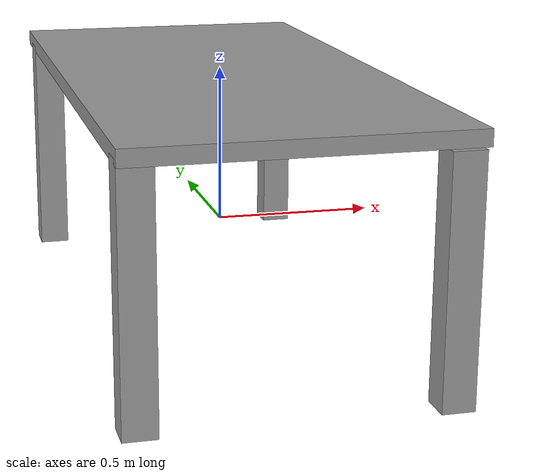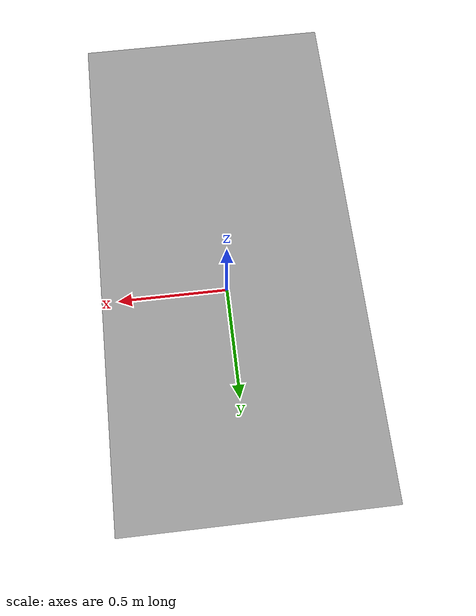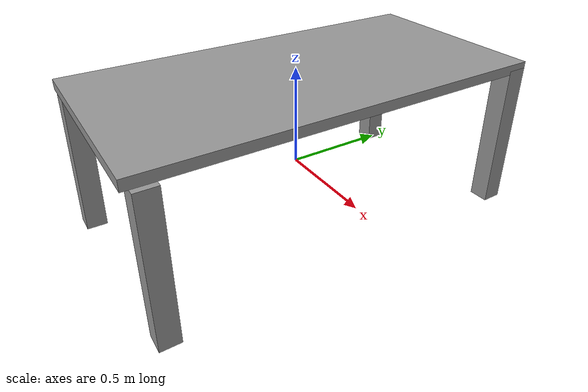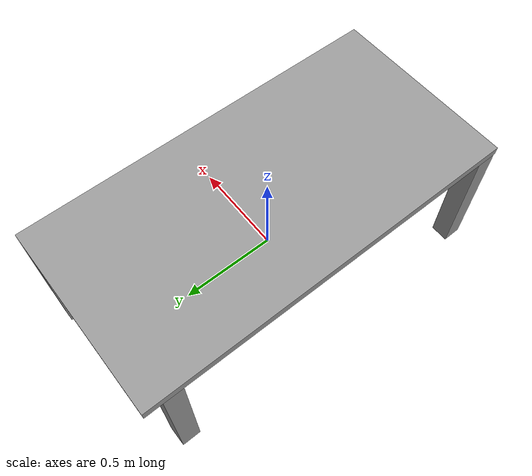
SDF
<?xml version='1.0'?>
<sdf version='1.6'>
  <model name='table'>
    <link name='link_2'>
      <pose frame=''>-0.000914 0.01077 -0.287764 0 -0 0</pose>
      <inertial>
        <mass>1</mass>
        <inertia>
          <ixx>0.166667</ixx>
          <ixy>0</ixy>
          <ixz>0</ixz>
          <iyy>0.166667</iyy>
          <iyz>0</iyz>
          <izz>0.166667</izz>
        </inertia>
        <pose frame=''>0 0 0 0 -0 0</pose>
      </inertial>
      <gravity>1</gravity>
      <self_collide>0</self_collide>
      <kinematic>0</kinematic>
      <visual name='visual'>
        <pose frame=''>0 0 0.75 0 -0 0</pose>
        <geometry>
          <box>
            <size>1 2 0.05</size>
          </box>
        </geometry>
        <material>
          <lighting>1</lighting>
          <script>
            <uri>file://media/materials/scripts/gazebo.material</uri>
            <name>Gazebo/Grey</name>
          </script>
          <ambient>0.3 0.3 0.3 1</ambient>
          <diffuse>0.7 0.7 0.7 1</diffuse>
          <specular>0.01 0.01 0.01 1</specular>
          <emissive>0 0 0 1</emissive>
          <shader type='vertex'>
            <normal_map>__default__</normal_map>
          </shader>
        </material>
        <transparency>0</transparency>
        <cast_shadows>1</cast_shadows>
      </visual>
      <collision name='collision'>
        <laser_retro>0</laser_retro>
        <max_contacts>10</max_contacts>
        <pose frame=''>0 0 0.75 0 -0 0</pose>
        <geometry>
          <box>
            <size>1 2 0.05</size>
          </box>
        </geometry>
        <surface>
          <friction>
            <ode>
              <mu>1</mu>
              <mu2>1</mu2>
              <fdir1>0 0 0</fdir1>
              <slip1>0</slip1>
              <slip2>0</slip2>
            </ode>
            <torsional>
              <coefficient>1</coefficient>
              <patch_radius>0</patch_radius>
              <surface_radius>0</surface_radius>
              <use_patch_radius>1</use_patch_radius>
              <ode>
                <slip>0</slip>
              </ode>
            </torsional>
          </friction>
          <bounce>
            <restitution_coefficient>0</restitution_coefficient>
            <threshold>1e+06</threshold>
          </bounce>
          <contact>
            <collide_without_contact>0</collide_without_contact>
            <collide_without_contact_bitmask>1</collide_without_contact_bitmask>
            <collide_bitmask>1</collide_bitmask>
            <ode>
              <soft_cfm>0</soft_cfm>
              <soft_erp>0.2</soft_erp>
              <kp>1e+13</kp>
              <kd>1</kd>
              <max_vel>0.01</max_vel>
              <min_depth>0</min_depth>
            </ode>
            <bullet>
              <split_impulse>1</split_impulse>
              <split_impulse_penetration_threshold>-0.01</split_impulse_penetration_threshold>
              <soft_cfm>0</soft_cfm>
              <soft_erp>0.2</soft_erp>
              <kp>1e+13</kp>
              <kd>1</kd>
            </bullet>
          </contact>
        </surface>
      </collision>
    </link>
    <link name='link_3'>
      <pose frame=''>-0.450914 0.87078 0.080236 0 -0 0</pose>
      <inertial>
        <mass>1</mass>
        <inertia>
          <ixx>0.166667</ixx>
          <ixy>0</ixy>
          <ixz>0</ixz>
          <iyy>0.166667</iyy>
          <iyz>0</iyz>
          <izz>0.166667</izz>
        </inertia>
        <pose frame=''>0 0 0 0 -0 0</pose>
      </inertial>
      <gravity>1</gravity>
      <self_collide>0</self_collide>
      <kinematic>0</kinematic>
      <visual name='visual'>
        <pose frame=''>0 0 0 0 -0 0</pose>
        <geometry>
          <box>
            <size>0.1 0.1 0.75</size>
          </box>
        </geometry>
        <material>
          <lighting>1</lighting>
          <script>
            <uri>file://media/materials/scripts/gazebo.material</uri>
            <name>Gazebo/Grey</name>
          </script>
          <ambient>0.3 0.3 0.3 1</ambient>
          <diffuse>0.7 0.7 0.7 1</diffuse>
          <specular>0.01 0.01 0.01 1</specular>
          <emissive>0 0 0 1</emissive>
          <shader type='vertex'>
            <normal_map>__default__</normal_map>
          </shader>
        </material>
        <transparency>0</transparency>
        <cast_shadows>1</cast_shadows>
      </visual>
      <collision name='collision'>
        <laser_retro>0</laser_retro>
        <max_contacts>10</max_contacts>
        <pose frame=''>0 0 0 0 -0 0</pose>
        <geometry>
          <box>
            <size>0.1 0.1 0.75</size>
          </box>
        </geometry>
        <surface>
          <friction>
            <ode>
              <mu>1</mu>
              <mu2>1</mu2>
              <fdir1>0 0 0</fdir1>
              <slip1>0</slip1>
              <slip2>0</slip2>
            </ode>
            <torsional>
              <coefficient>1</coefficient>
              <patch_radius>0</patch_radius>
              <surface_radius>0</surface_radius>
              <use_patch_radius>1</use_patch_radius>
              <ode>
                <slip>0</slip>
              </ode>
            </torsional>
          </friction>
          <bounce>
            <restitution_coefficient>0</restitution_coefficient>
            <threshold>1e+06</threshold>
          </bounce>
          <contact>
            <collide_without_contact>0</collide_without_contact>
            <collide_without_contact_bitmask>1</collide_without_contact_bitmask>
            <collide_bitmask>1</collide_bitmask>
            <ode>
              <soft_cfm>0</soft_cfm>
              <soft_erp>0.2</soft_erp>
              <kp>1e+13</kp>
              <kd>1</kd>
              <max_vel>0.01</max_vel>
              <min_depth>0</min_depth>
            </ode>
            <bullet>
              <split_impulse>1</split_impulse>
              <split_impulse_penetration_threshold>-0.01</split_impulse_penetration_threshold>
              <soft_cfm>0</soft_cfm>
              <soft_erp>0.2</soft_erp>
              <kp>1e+13</kp>
              <kd>1</kd>
            </bullet>
          </contact>
        </surface>
      </collision>
    </link>
    <link name='link_3_clone_0'>
      <pose frame=''>0.45366 -0.903088 0.047057 0 -0 0</pose>
      <inertial>
        <mass>1</mass>
        <inertia>
          <ixx>0.166667</ixx>
          <ixy>0</ixy>
          <ixz>0</ixz>
          <iyy>0.166667</iyy>
          <iyz>0</iyz>
          <izz>0.166667</izz>
        </inertia>
        <pose frame=''>0 0 0 0 -0 0</pose>
      </inertial>
      <self_collide>0</self_collide>
      <kinematic>0</kinematic>
      <visual name='visual'>
        <pose frame=''>0 0 0 0 -0 0</pose>
        <geometry>
          <box>
            <size>0.1 0.1 0.75</size>
          </box>
        </geometry>
        <material>
          <lighting>1</lighting>
          <script>
            <uri>file://media/materials/scripts/gazebo.material</uri>
            <name>Gazebo/Grey</name>
          </script>
          <ambient>0.3 0.3 0.3 1</ambient>
          <diffuse>0.7 0.7 0.7 1</diffuse>
          <specular>0.01 0.01 0.01 1</specular>
          <emissive>0 0 0 1</emissive>
          <shader type='vertex'>
            <normal_map>__default__</normal_map>
          </shader>
        </material>
        <transparency>0</transparency>
        <cast_shadows>1</cast_shadows>
      </visual>
      <collision name='collision'>
        <laser_retro>0</laser_retro>
        <max_contacts>10</max_contacts>
        <pose frame=''>0 0 0 0 -0 0</pose>
        <geometry>
          <box>
            <size>0.1 0.1 0.75</size>
          </box>
        </geometry>
        <surface>
          <friction>
            <ode>
              <mu>1</mu>
              <mu2>1</mu2>
              <fdir1>0 0 0</fdir1>
              <slip1>0</slip1>
              <slip2>0</slip2>
            </ode>
            <torsional>
              <coefficient>1</coefficient>
              <patch_radius>0</patch_radius>
              <surface_radius>0</surface_radius>
              <use_patch_radius>1</use_patch_radius>
              <ode>
                <slip>0</slip>
              </ode>
            </torsional>
          </friction>
          <bounce>
            <restitution_coefficient>0</restitution_coefficient>
            <threshold>1e+06</threshold>
          </bounce>
          <contact>
            <collide_without_contact>0</collide_without_contact>
            <collide_without_contact_bitmask>1</collide_without_contact_bitmask>
            <collide_bitmask>1</collide_bitmask>
            <ode>
              <soft_cfm>0</soft_cfm>
              <soft_erp>0.2</soft_erp>
              <kp>1e+13</kp>
              <kd>1</kd>
              <max_vel>0.01</max_vel>
              <min_depth>0</min_depth>
            </ode>
            <bullet>
              <split_impulse>1</split_impulse>
              <split_impulse_penetration_threshold>-0.01</split_impulse_penetration_threshold>
              <soft_cfm>0</soft_cfm>
              <soft_erp>0.2</soft_erp>
              <kp>1e+13</kp>
              <kd>1</kd>
            </bullet>
          </contact>
        </surface>
      </collision>
    </link>
    <link name='link_3_clone_0_clone'>
      <pose frame=''>-0.450914 -0.93923 0.080236 -0.02 0 0</pose>
      <inertial>
        <mass>1</mass>
        <inertia>
          <ixx>0.166667</ixx>
          <ixy>0</ixy>
          <ixz>0</ixz>
          <iyy>0.166667</iyy>
          <iyz>0</iyz>
          <izz>0.166667</izz>
        </inertia>
        <pose frame=''>0 0 0 0 -0 0</pose>
      </inertial>
      <self_collide>0</self_collide>
      <kinematic>0</kinematic>
      <visual name='visual'>
        <pose frame=''>0 0 0 0 -0 0</pose>
        <geometry>
          <box>
            <size>0.1 0.1 0.75</size>
          </box>
        </geometry>
        <material>
          <lighting>1</lighting>
          <script>
            <uri>file://media/materials/scripts/gazebo.material</uri>
            <name>Gazebo/Grey</name>
          </script>
          <ambient>0.3 0.3 0.3 1</ambient>
          <diffuse>0.7 0.7 0.7 1</diffuse>
          <specular>0.01 0.01 0.01 1</specular>
          <emissive>0 0 0 1</emissive>
          <shader type='vertex'>
            <normal_map>__default__</normal_map>
          </shader>
        </material>
        <transparency>0</transparency>
        <cast_shadows>1</cast_shadows>
      </visual>
      <collision name='collision'>
        <laser_retro>0</laser_retro>
        <max_contacts>10</max_contacts>
        <pose frame=''>0 0 0 0 -0 0</pose>
        <geometry>
          <box>
            <size>0.1 0.1 0.75</size>
          </box>
        </geometry>
        <surface>
          <friction>
            <ode>
              <mu>1</mu>
              <mu2>1</mu2>
              <fdir1>0 0 0</fdir1>
              <slip1>0</slip1>
              <slip2>0</slip2>
            </ode>
            <torsional>
              <coefficient>1</coefficient>
              <patch_radius>0</patch_radius>
              <surface_radius>0</surface_radius>
              <use_patch_radius>1</use_patch_radius>
              <ode>
                <slip>0</slip>
              </ode>
            </torsional>
          </friction>
          <bounce>
            <restitution_coefficient>0</restitution_coefficient>
            <threshold>1e+06</threshold>
          </bounce>
          <contact>
            <collide_without_contact>0</collide_without_contact>
            <collide_without_contact_bitmask>1</collide_without_contact_bitmask>
            <collide_bitmask>1</collide_bitmask>
            <ode>
              <soft_cfm>0</soft_cfm>
              <soft_erp>0.2</soft_erp>
              <kp>1e+13</kp>
              <kd>1</kd>
              <max_vel>0.01</max_vel>
              <min_depth>0</min_depth>
            </ode>
            <bullet>
              <split_impulse>1</split_impulse>
              <split_impulse_penetration_threshold>-0.01</split_impulse_penetration_threshold>
              <soft_cfm>0</soft_cfm>
              <soft_erp>0.2</soft_erp>
              <kp>1e+13</kp>
              <kd>1</kd>
            </bullet>
          </contact>
        </surface>
      </collision>
    </link>
    <link name='link_3_clone_1'>
      <pose frame=''>0.449089 0.960775 0.080236 0 -0 0</pose>
      <inertial>
        <mass>1</mass>
        <inertia>
          <ixx>0.166667</ixx>
          <ixy>0</ixy>
          <ixz>0</ixz>
          <iyy>0.166667</iyy>
          <iyz>0</iyz>
          <izz>0.166667</izz>
        </inertia>
        <pose frame=''>0 0 0 0 -0 0</pose>
      </inertial>
      <self_collide>0</self_collide>
      <kinematic>0</kinematic>
      <visual name='visual'>
        <pose frame=''>0 0 0 0 -0 0</pose>
        <geometry>
          <box>
            <size>0.1 0.1 0.75</size>
          </box>
        </geometry>
        <material>
          <lighting>1</lighting>
          <script>
            <uri>file://media/materials/scripts/gazebo.material</uri>
            <name>Gazebo/Grey</name>
          </script>
          <ambient>0.3 0.3 0.3 1</ambient>
          <diffuse>0.7 0.7 0.7 1</diffuse>
          <specular>0.01 0.01 0.01 1</specular>
          <emissive>0 0 0 1</emissive>
          <shader type='vertex'>
            <normal_map>__default__</normal_map>
          </shader>
        </material>
        <transparency>0</transparency>
        <cast_shadows>1</cast_shadows>
      </visual>
      <collision name='collision'>
        <laser_retro>0</laser_retro>
        <max_contacts>10</max_contacts>
        <pose frame=''>0 0 0 0 -0 0</pose>
        <geometry>
          <box>
            <size>0.1 0.1 0.75</size>
          </box>
        </geometry>
        <surface>
          <friction>
            <ode>
              <mu>1</mu>
              <mu2>1</mu2>
              <fdir1>0 0 0</fdir1>
              <slip1>0</slip1>
              <slip2>0</slip2>
            </ode>
            <torsional>
              <coefficient>1</coefficient>
              <patch_radius>0</patch_radius>
              <surface_radius>0</surface_radius>
              <use_patch_radius>1</use_patch_radius>
              <ode>
                <slip>0</slip>
              </ode>
            </torsional>
          </friction>
          <bounce>
            <restitution_coefficient>0</restitution_coefficient>
            <threshold>1e+06</threshold>
          </bounce>
          <contact>
            <collide_without_contact>0</collide_without_contact>
            <collide_without_contact_bitmask>1</collide_without_contact_bitmask>
            <collide_bitmask>1</collide_bitmask>
            <ode>
              <soft_cfm>0</soft_cfm>
              <soft_erp>0.2</soft_erp>
              <kp>1e+13</kp>
              <kd>1</kd>
              <max_vel>0.01</max_vel>
              <min_depth>0</min_depth>
            </ode>
            <bullet>
              <split_impulse>1</split_impulse>
              <split_impulse_penetration_threshold>-0.01</split_impulse_penetration_threshold>
              <soft_cfm>0</soft_cfm>
              <soft_erp>0.2</soft_erp>
              <kp>1e+13</kp>
              <kd>1</kd>
            </bullet>
          </contact>
        </surface>
      </collision>
    </link>
    <joint name='link_2_JOINT_10' type='fixed'>
      <parent>link_2</parent>
      <child>link_3_clone_1</child>
      <pose frame=''>0 0 0 0 -0 0</pose>
      <physics>
        <ode>
          <limit>
            <cfm>0</cfm>
            <erp>0.2</erp>
          </limit>
          <suspension>
            <cfm>0</cfm>
            <erp>0.2</erp>
          </suspension>
        </ode>
      </physics>
    </joint>
    <joint name='link_2_JOINT_11' type='fixed'>
      <parent>link_2</parent>
      <child>link_3</child>
      <pose frame=''>0 0 0 0 -0 0</pose>
      <physics>
        <ode>
          <limit>
            <cfm>0</cfm>
            <erp>0.2</erp>
          </limit>
          <suspension>
            <cfm>0</cfm>
            <erp>0.2</erp>
          </suspension>
        </ode>
      </physics>
    </joint>
    <joint name='link_2_JOINT_12' type='fixed'>
      <parent>link_2</parent>
      <child>link_3_clone_0_clone</child>
      <pose frame=''>0 0 0 0 -0 0</pose>
      <physics>
        <ode>
          <limit>
            <cfm>0</cfm>
            <erp>0.2</erp>
          </limit>
          <suspension>
            <cfm>0</cfm>
            <erp>0.2</erp>
          </suspension>
        </ode>
      </physics>
    </joint>
    <joint name='link_2_JOINT_8' type='fixed'>
      <parent>link_2</parent>
      <child>link_3_clone_0</child>
      <pose frame=''>0 0 0 0 -0 0</pose>
      <physics>
        <ode>
          <limit>
            <cfm>0</cfm>
            <erp>0.2</erp>
          </limit>
          <suspension>
            <cfm>0</cfm>
            <erp>0.2</erp>
          </suspension>
        </ode>
      </physics>
    </joint>
    <joint name='link_2_JOINT_9' type='fixed'>
      <parent>link_2</parent>
      <child>link_3</child>
      <pose frame=''>0 0 0 0 -0 0</pose>
      <physics>
        <ode>
          <limit>
            <cfm>0</cfm>
            <erp>0.2</erp>
          </limit>
          <suspension>
            <cfm>0</cfm>
            <erp>0.2</erp>
          </suspension>
        </ode>
      </physics>
    </joint>
    <static>0</static>
    <allow_auto_disable>1</allow_auto_disable>
  </model>
</sdf>
